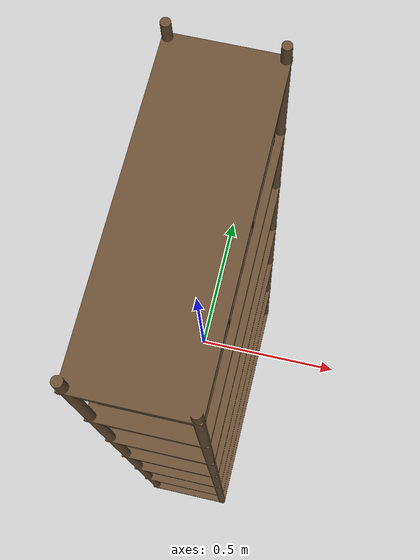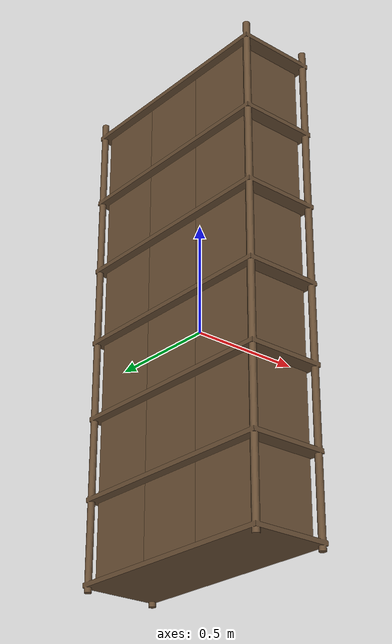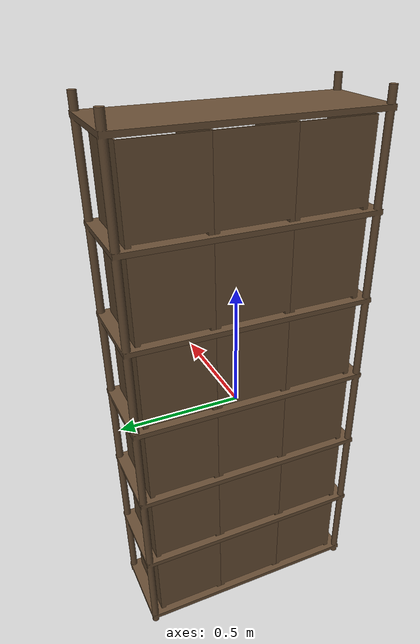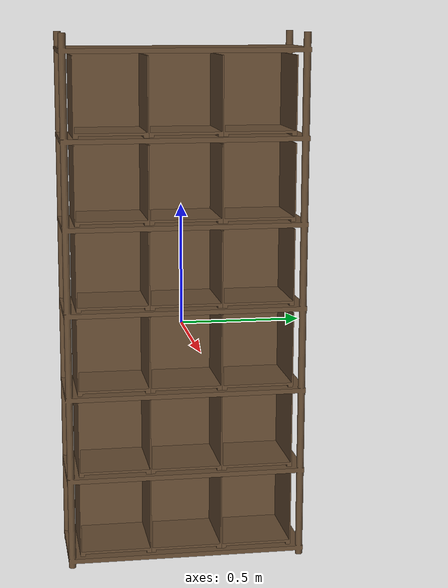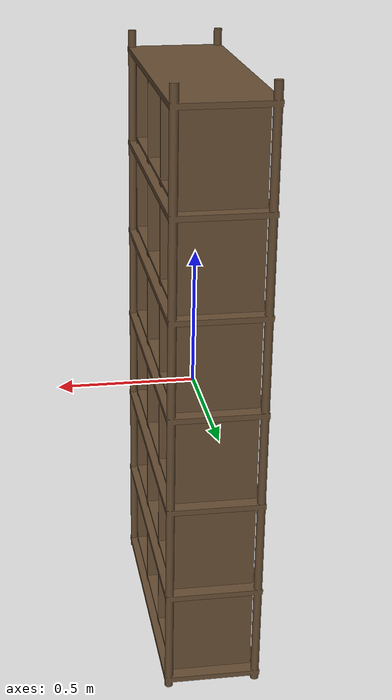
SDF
<?xml version='1.0' encoding='utf-8'?>
<sdf version="1.6">
  <model name="lib_shelf">
    <static>true</static>

    <!-- Bookshelf Frame -->
    <include>
      <uri>model://bookshelf</uri>
      <name>shelf_frame</name>
      <pose>0 0 0 0 0 0</pose>
    </include>

    <!-- Bookcubes on bookshelf (6 levels, 3 books each, 0.3m Y spacing) -->
    <!-- Level 1 - Y axis spread, Z=-0.96 -->
    <include>
      <uri>model://bookcube</uri>
      <name>bookcube_L1_1</name>
      <pose>0 -0.3 -0.96 0 0 0</pose>
    </include>
    <include>
      <uri>model://bookcube</uri>
      <name>bookcube_L1_2</name>
      <pose>0 0 -0.96 0 0 0</pose>
    </include>
    <include>
      <uri>model://bookcube</uri>
      <name>bookcube_L1_3</name>
      <pose>0 0.3 -0.96 0 0 0</pose>
    </include>

    <!-- Level 2 - Y axis spread, Z=-0.61 -->
    <include>
      <uri>model://bookcube</uri>
      <name>bookcube_L2_1</name>
      <pose>0 -0.3 -0.61 0 0 0</pose>
    </include>
    <include>
      <uri>model://bookcube</uri>
      <name>bookcube_L2_2</name>
      <pose>0 0 -0.61 0 0 0</pose>
    </include>
    <include>
      <uri>model://bookcube</uri>
      <name>bookcube_L2_3</name>
      <pose>0 0.3 -0.61 0 0 0</pose>
    </include>

    <!-- Level 3 - Y axis spread, Z=-0.26 -->
    <include>
      <uri>model://bookcube</uri>
      <name>bookcube_L3_1</name>
      <pose>0 -0.3 -0.26 0 0 0</pose>
    </include>
    <include>
      <uri>model://bookcube</uri>
      <name>bookcube_L3_2</name>
      <pose>0 0 -0.26 0 0 0</pose>
    </include>
    <include>
      <uri>model://bookcube</uri>
      <name>bookcube_L3_3</name>
      <pose>0 0.3 -0.26 0 0 0</pose>
    </include>

    <!-- Level 4 - Y axis spread, Z=0.09 -->
    <include>
      <uri>model://bookcube</uri>
      <name>bookcube_L4_1</name>
      <pose>0 -0.3 0.09 0 0 0</pose>
    </include>
    <include>
      <uri>model://bookcube</uri>
      <name>bookcube_L4_2</name>
      <pose>0 0 0.09 0 0 0</pose>
    </include>
    <include>
      <uri>model://bookcube</uri>
      <name>bookcube_L4_3</name>
      <pose>0 0.3 0.09 0 0 0</pose>
    </include>

    <!-- Level 5 - Y axis spread, Z=0.44 -->
    <include>
      <uri>model://bookcube</uri>
      <name>bookcube_L5_1</name>
      <pose>0 -0.3 0.44 0 0 0</pose>
    </include>
    <include>
      <uri>model://bookcube</uri>
      <name>bookcube_L5_2</name>
      <pose>0 0 0.44 0 0 0</pose>
    </include>
    <include>
      <uri>model://bookcube</uri>
      <name>bookcube_L5_3</name>
      <pose>0 0.3 0.44 0 0 0</pose>
    </include>

    <!-- Level 6 - Y axis spread, Z=0.79 -->
    <include>
      <uri>model://bookcube</uri>
      <name>bookcube_L6_1</name>
      <pose>0 -0.3 0.79 0 0 0</pose>
    </include>
    <include>
      <uri>model://bookcube</uri>
      <name>bookcube_L6_2</name>
      <pose>0 0 0.79 0 0 0</pose>
    </include>
    <include>
      <uri>model://bookcube</uri>
      <name>bookcube_L6_3</name>
      <pose>0 0.3 0.79 0 0 0</pose>
    </include>

  </model>
</sdf>

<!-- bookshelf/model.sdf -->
<sdf version="1.6">
  <model name="bookshelf">
    <static>true</static>

    <!-- Bookshelf Frame -->
    <link name="frame">
      <pose>0 0 -1 -1.57 0 0</pose>

      <inertial>
        <mass>50.0</mass>
        <inertia>
          <ixx>10.0</ixx>
          <iyy>10.0</iyy>
          <izz>2.0</izz>
        </inertia>
      </inertial>

      <!-- Frame Visual (poles + back plate + base) -->
      <visual name="frame_visual">
        <pose>0 0 0 0 0 0</pose>
        <geometry>
          <mesh>
            <uri>model://bookshelf/shelf.dae</uri>
            <scale>1 1 1</scale>
          </mesh>
        </geometry>
        <material>
          <ambient>0.4 0.3 0.2 1.0</ambient>
          <diffuse>0.4 0.3 0.2 1.0</diffuse>
          <specular>0.1 0.1 0.1 1.0</specular>
        </material>
      </visual>

      <!-- Frame Collision -->
      <collision name="frame_collision">
        <pose>0 0 0 0 0 0</pose>
        <geometry>
          <mesh>
            <uri>model://bookshelf/shelf.dae</uri>
            <scale>1 1 1</scale>
          </mesh>
        </geometry>
      </collision>

    </link>

    <!-- All bookcubes removed from shelf -->

  </model>
</sdf>

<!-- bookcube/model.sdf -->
<sdf version="1.6">
  <model name="bookcube">
    <static>true</static>
    <link name="link">
      <pose>0 0 0 0 0 0</pose>

      <inertial>
        <mass>1.0</mass>
        <inertia>
          <ixx>0.166667</ixx>
          <ixy>0</ixy>
          <ixz>0</ixz>
          <iyy>0.166667</iyy>
          <iyz>0</iyz>
          <izz>0.166667</izz>
        </inertia>
      </inertial>

      <!-- Visual: Using user's STL mesh -->
      <visual name="visual">
        <geometry>
          <mesh>
            <uri>package://bookrobot_description/meshes/collision/bookcube_new.stl</uri>
            <scale>0.001 0.001 0.001</scale>
          </mesh>
        </geometry>
        <material>
          <ambient>0.4 0.3 0.2 1.0</ambient>
          <diffuse>0.4 0.3 0.2 1.0</diffuse>
          <specular>0.1 0.1 0.1 1.0</specular>
        </material>
      </visual>

      <!-- Collision: Using user's STL mesh -->
      <collision name="collision">
        <geometry>
          <mesh>
            <uri>package://bookrobot_description/meshes/collision/bookcube_new.stl</uri>
            <scale>0.001 0.001 0.001</scale>
          </mesh>
        </geometry>
      </collision>
    </link>
  </model>
</sdf>
